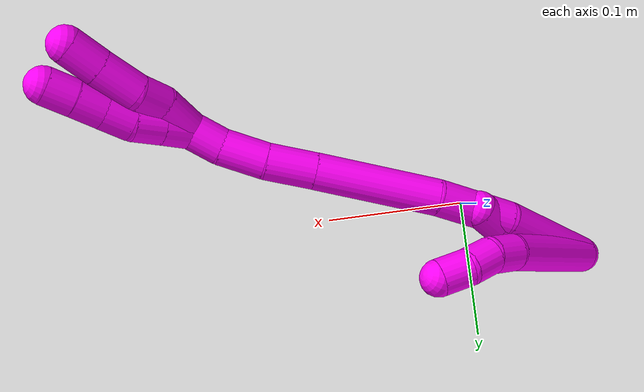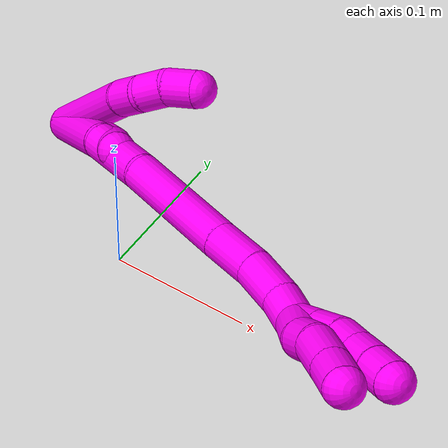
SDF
<sdf version="1.7">
 <world name="default">
  <model name="photoneo_s_sensor">
   <static>1</static>
   <pose>0 0 2 1.57079 1.57079 3.14159</pose>
   <link name="link">
    <inertial><mass>0.1</mass></inertial>
    <sensor name="sensor" type="depth">
     <update_rate>30</update_rate>
     <camera>
      <horizontal_fov>1.22</horizontal_fov>
      <image><width>1920</width><height>1200</height><format>B8G8R8</format></image>
      <clip><near>0.1</near><far>4</far></clip>
      <depth_camera><output>points</output></depth_camera>
     </camera>
     <plugin name="camera_plugin" filename="libgazebo_ros_depth_camera.so">
      <baseline>0.2</baseline>
      <alwaysOn>1</alwaysOn>
      <updateRate>0.0</updateRate>
      <cameraName>camera_ir</cameraName>
      <imageTopicName>/camera/color/image_raw</imageTopicName>
      <cameraInfoTopicName>/camera/color/camera_info</cameraInfoTopicName>
      <depthImageTopicName>/camera/depth/image_raw</depthImageTopicName>
      <depthImageCameraInfoTopicName>/camera/depth/camera_info</depthImageCameraInfoTopicName>
      <pointCloudTopicName>/camera/depth/points</pointCloudTopicName>
      <frameName>fr_optical</frameName>
      <pointCloudCutoff>0.1</pointCloudCutoff>
      <pointCloudCutoffMax>2.0</pointCloudCutoffMax>
      <distortionK1>0</distortionK1>
      <distortionK2>0</distortionK2>
      <distortionK3>0</distortionK3>
      <distortionT1>0</distortionT1>
      <distortionT2>0</distortionT2>
      <CxPrime>0</CxPrime>
      <Cx>0</Cx>
      <Cy>0</Cy>
      <focalLength>0</focalLength>
      <hackBaseline>0</hackBaseline>
     </plugin>
    </sensor>
   </link>
  </model>
  <model name="bin">
   <static>1</static>
   <link name="bottom">
    <collision name="collision-bottom">
     <pose>0 0 -0.01 0 -0 0</pose>
     <geometry><box><size>0.8 0.6 0.02</size></box></geometry>
     <surface>
      <friction><ode><mu>100</mu><mu2>100</mu2></ode></friction>
      <contact><collide_bitmask>65535</collide_bitmask></contact>
     </surface>
    </collision>
   </link>
   <link name="west_wall">
    <collision name="collision-west_wall">
     <pose>-0.41 0 0.1 0 -0 0</pose>
     <geometry><box><size>0.02 0.6 0.2</size></box></geometry>
     <surface>
      <friction><ode><mu>100</mu><mu2>100</mu2></ode></friction>
      <contact><collide_bitmask>65535</collide_bitmask></contact>
     </surface>
    </collision>
   </link>
   <link name="east_wall">
    <collision name="collision-east_wall">
     <pose>0.41 0 0.1 0 -0 0</pose>
     <geometry><box><size>0.02 0.6 0.2</size></box></geometry>
     <surface>
      <friction><ode><mu>100</mu><mu2>100</mu2></ode></friction>
      <contact><collide_bitmask>65535</collide_bitmask></contact>
     </surface>
    </collision>
   </link>
   <link name="south_wall">
    <collision name="collision-south_wall">
     <pose>0 -0.31 0.1 0 -0 0</pose>
     <geometry><box><size>0.8 0.02 0.2</size></box></geometry>
     <surface>
      <friction><ode><mu>100</mu><mu2>100</mu2></ode></friction>
      <contact><collide_bitmask>65535</collide_bitmask></contact>
     </surface>
    </collision>
   </link>
   <link name="north_wall">
    <collision name="collision-north_wall">
     <pose>0 0.31 0.1 0 -0 0</pose>
     <geometry><box><size>0.8 0.02 0.2</size></box></geometry>
     <surface>
      <friction><ode><mu>100</mu><mu2>100</mu2></ode></friction>
      <contact><collide_bitmask>65535</collide_bitmask></contact>
     </surface>
    </collision>
   </link>
  </model>
  <model name="10">
   <static>0</static>
   <link name="10">
    <collision name="collision-cylinder-e_1_2_8">
     <pose>-0.012011 -0.006168 -0.041383 2.99363 -0.27956 -2.17192</pose>
     <geometry><cylinder><radius>0.0125</radius><length>0.087059</length></cylinder></geometry>
     <surface>
      <friction><ode><mu>1.16</mu><mu2>1.16</mu2><slip1>0</slip1><slip2>0</slip2></ode></friction>
      <contact><ode><kp>1e+06</kp><kd>1</kd><max_vel>0</max_vel><min_depth>0.001</min_depth></ode></contact>
     </surface>
    </collision>
    <visual name="visual-cylinder-e_1_2_8">
     <pose>-0.012011 -0.006168 -0.041383 2.99363 -0.27956 -2.17192</pose>
     <geometry><cylinder><radius>0.0125</radius><length>0.087059</length></cylinder></geometry>
     <material><ambient>1 0 0.964706 1</ambient></material>
    </visual>
    <collision name="collision-cylinder-e_2_8_9">
     <pose>-0.025495 -0.015121 -0.093042 2.87697 -0.1374 -0.954331</pose>
     <geometry><cylinder><radius>0.0125</radius><length>0.021498</length></cylinder></geometry>
     <surface>
      <friction><ode><mu>1.16</mu><mu2>1.16</mu2><slip1>0</slip1><slip2>0</slip2></ode></friction>
      <contact><ode><kp>1e+06</kp><kd>1</kd><max_vel>0</max_vel><min_depth>0.001</min_depth></ode></contact>
     </surface>
    </collision>
    <visual name="visual-cylinder-e_2_8_9">
     <pose>-0.025495 -0.015121 -0.093042 2.87697 -0.1374 -0.954331</pose>
     <geometry><cylinder><radius>0.0125</radius><length>0.021498</length></cylinder></geometry>
     <material><ambient>1 0 0.964706 1</ambient></material>
    </visual>
    <collision name="collision-cylinder-e_3_9_10">
     <pose>-0.027263 -0.023348 -0.111787 2.57037 -0.029405 -0.100064</pose>
     <geometry><cylinder><radius>0.0125</radius><length>0.020141</length></cylinder></geometry>
     <surface>
      <friction><ode><mu>1.16</mu><mu2>1.16</mu2><slip1>0</slip1><slip2>0</slip2></ode></friction>
      <contact><ode><kp>1e+06</kp><kd>1</kd><max_vel>0</max_vel><min_depth>0.001</min_depth></ode></contact>
     </surface>
    </collision>
    <visual name="visual-cylinder-e_3_9_10">
     <pose>-0.027263 -0.023348 -0.111787 2.57037 -0.029405 -0.100064</pose>
     <geometry><cylinder><radius>0.0125</radius><length>0.020141</length></cylinder></geometry>
     <material><ambient>1 0 0.964706 1</ambient></material>
    </visual>
    <collision name="collision-cylinder-e_4_10_6">
     <pose>-0.02481 -0.034077 -0.129083 2.60203 0.261083 0.886542</pose>
     <geometry><cylinder><radius>0.0125</radius><length>0.021302</length></cylinder></geometry>
     <surface>
      <friction><ode><mu>1.16</mu><mu2>1.16</mu2><slip1>0</slip1><slip2>0</slip2></ode></friction>
      <contact><ode><kp>1e+06</kp><kd>1</kd><max_vel>0</max_vel><min_depth>0.001</min_depth></ode></contact>
     </surface>
    </collision>
    <visual name="visual-cylinder-e_4_10_6">
     <pose>-0.02481 -0.034077 -0.129083 2.60203 0.261083 0.886542</pose>
     <geometry><cylinder><radius>0.0125</radius><length>0.021302</length></cylinder></geometry>
     <material><ambient>1 0 0.964706 1</ambient></material>
    </visual>
    <collision name="collision-cylinder-e_1_2_11">
     <pose>0.00028 0.00024 -0.009993 -3.11757 0.028033 -1.72481</pose>
     <geometry><cylinder><radius>0.0125</radius><length>0.02</length></cylinder></geometry>
     <surface>
      <friction><ode><mu>1.16</mu><mu2>1.16</mu2><slip1>0</slip1><slip2>0</slip2></ode></friction>
      <contact><ode><kp>1e+06</kp><kd>1</kd><max_vel>0</max_vel><min_depth>0.001</min_depth></ode></contact>
     </surface>
    </collision>
    <visual name="visual-cylinder-e_1_2_11">
     <pose>0.00028 0.00024 -0.009993 -3.11757 0.028033 -1.72481</pose>
     <geometry><cylinder><radius>0.0125</radius><length>0.02</length></cylinder></geometry>
     <material><ambient>1 0 0.964706 1</ambient></material>
    </visual>
    <collision name="collision-cylinder-e_2_11_12">
     <pose>0.000843 0.001031 -0.029967 -3.0865 0.028262 -0.947818</pose>
     <geometry><cylinder><radius>0.0125</radius><length>0.02</length></cylinder></geometry>
     <surface>
      <friction><ode><mu>1.16</mu><mu2>1.16</mu2><slip1>0</slip1><slip2>0</slip2></ode></friction>
      <contact><ode><kp>1e+06</kp><kd>1</kd><max_vel>0</max_vel><min_depth>0.001</min_depth></ode></contact>
     </surface>
    </collision>
    <visual name="visual-cylinder-e_2_11_12">
     <pose>0.000843 0.001031 -0.029967 -3.0865 0.028262 -0.947818</pose>
     <geometry><cylinder><radius>0.0125</radius><length>0.02</length></cylinder></geometry>
     <material><ambient>1 0 0.964706 1</ambient></material>
    </visual>
    <collision name="collision-cylinder-e_3_12_13">
     <pose>0.001004 0.002781 -0.049875 -3.02128 -0.012143 0.200929</pose>
     <geometry><cylinder><radius>0.0125</radius><length>0.02</length></cylinder></geometry>
     <surface>
      <friction><ode><mu>1.16</mu><mu2>1.16</mu2><slip1>0</slip1><slip2>0</slip2></ode></friction>
      <contact><ode><kp>1e+06</kp><kd>1</kd><max_vel>0</max_vel><min_depth>0.001</min_depth></ode></contact>
     </surface>
    </collision>
    <visual name="visual-cylinder-e_3_12_13">
     <pose>0.001004 0.002781 -0.049875 -3.02128 -0.012143 0.200929</pose>
     <geometry><cylinder><radius>0.0125</radius><length>0.02</length></cylinder></geometry>
     <material><ambient>1 0 0.964706 1</ambient></material>
    </visual>
    <collision name="collision-cylinder-e_4_13_14">
     <pose>0.001157 0.005312 -0.069709 -3.0081 0.027438 -0.404852</pose>
     <geometry><cylinder><radius>0.0125</radius><length>0.02</length></cylinder></geometry>
     <surface>
      <friction><ode><mu>1.16</mu><mu2>1.16</mu2><slip1>0</slip1><slip2>0</slip2></ode></friction>
      <contact><ode><kp>1e+06</kp><kd>1</kd><max_vel>0</max_vel><min_depth>0.001</min_depth></ode></contact>
     </surface>
    </collision>
    <visual name="visual-cylinder-e_4_13_14">
     <pose>0.001157 0.005312 -0.069709 -3.0081 0.027438 -0.404852</pose>
     <geometry><cylinder><radius>0.0125</radius><length>0.02</length></cylinder></geometry>
     <material><ambient>1 0 0.964706 1</ambient></material>
    </visual>
    <collision name="collision-cylinder-e_5_14_5">
     <pose>0.000229 0.009811 -0.089025 -2.81668 -0.120596 0.705837</pose>
     <geometry><cylinder><radius>0.0125</radius><length>0.02</length></cylinder></geometry>
     <surface>
      <friction><ode><mu>1.16</mu><mu2>1.16</mu2><slip1>0</slip1><slip2>0</slip2></ode></friction>
      <contact><ode><kp>1e+06</kp><kd>1</kd><max_vel>0</max_vel><min_depth>0.001</min_depth></ode></contact>
     </surface>
    </collision>
    <visual name="visual-cylinder-e_5_14_5">
     <pose>0.000229 0.009811 -0.089025 -2.81668 -0.120596 0.705837</pose>
     <geometry><cylinder><radius>0.0125</radius><length>0.02</length></cylinder></geometry>
     <material><ambient>1 0 0.964706 1</ambient></material>
    </visual>
    <collision name="collision-cylinder-e_1_2_15">
     <pose>-0.001527 0.005426 -0.037379 -2.99745 -0.040404 0.545734</pose>
     <geometry><cylinder><radius>0.0125</radius><length>0.075604</length></cylinder></geometry>
     <surface>
      <friction><ode><mu>1.16</mu><mu2>1.16</mu2><slip1>0</slip1><slip2>0</slip2></ode></friction>
      <contact><ode><kp>1e+06</kp><kd>1</kd><max_vel>0</max_vel><min_depth>0.001</min_depth></ode></contact>
     </surface>
    </collision>
    <visual name="visual-cylinder-e_1_2_15">
     <pose>-0.001527 0.005426 -0.037379 -2.99745 -0.040404 0.545734</pose>
     <geometry><cylinder><radius>0.0125</radius><length>0.075604</length></cylinder></geometry>
     <material><ambient>1 0 0.964706 1</ambient></material>
    </visual>
    <collision name="collision-cylinder-e_2_15_16">
     <pose>0.003159 0.012802 -0.100866 -3.067 0.232992 -2.5243</pose>
     <geometry><cylinder><radius>0.0125</radius><length>0.053813</length></cylinder></geometry>
     <surface>
      <friction><ode><mu>1.16</mu><mu2>1.16</mu2><slip1>0</slip1><slip2>0</slip2></ode></friction>
      <contact><ode><kp>1e+06</kp><kd>1</kd><max_vel>0</max_vel><min_depth>0.001</min_depth></ode></contact>
     </surface>
    </collision>
    <visual name="visual-cylinder-e_2_15_16">
     <pose>0.003159 0.012802 -0.100866 -3.067 0.232992 -2.5243</pose>
     <geometry><cylinder><radius>0.0125</radius><length>0.053813</length></cylinder></geometry>
     <material><ambient>1 0 0.964706 1</ambient></material>
    </visual>
    <collision name="collision-cylinder-e_3_16_17">
     <pose>0.027145 0.015291 -0.165179 -3.12753 0.43538 -3.07805</pose>
     <geometry><cylinder><radius>0.0125</radius><length>0.084283</length></cylinder></geometry>
     <surface>
      <friction><ode><mu>1.16</mu><mu2>1.16</mu2><slip1>0</slip1><slip2>0</slip2></ode></friction>
      <contact><ode><kp>1e+06</kp><kd>1</kd><max_vel>0</max_vel><min_depth>0.001</min_depth></ode></contact>
     </surface>
    </collision>
    <visual name="visual-cylinder-e_3_16_17">
     <pose>0.027145 0.015291 -0.165179 -3.12753 0.43538 -3.07805</pose>
     <geometry><cylinder><radius>0.0125</radius><length>0.084283</length></cylinder></geometry>
     <material><ambient>1 0 0.964706 1</ambient></material>
    </visual>
    <collision name="collision-cylinder-e_4_17_18">
     <pose>0.051702 0.015785 -0.21845 3.13878 0.423112 3.12851</pose>
     <geometry><cylinder><radius>0.0125</radius><length>0.033044</length></cylinder></geometry>
     <surface>
      <friction><ode><mu>1.16</mu><mu2>1.16</mu2><slip1>0</slip1><slip2>0</slip2></ode></friction>
      <contact><ode><kp>1e+06</kp><kd>1</kd><max_vel>0</max_vel><min_depth>0.001</min_depth></ode></contact>
     </surface>
    </collision>
    <visual name="visual-cylinder-e_4_17_18">
     <pose>0.051702 0.015785 -0.21845 3.13878 0.423112 3.12851</pose>
     <geometry><cylinder><radius>0.0125</radius><length>0.033044</length></cylinder></geometry>
     <material><ambient>1 0 0.964706 1</ambient></material>
    </visual>
    <collision name="collision-cylinder-e_5_18_19">
     <pose>0.065301 0.01754 -0.247068 -3.00978 0.462422 -2.59493</pose>
     <geometry><cylinder><radius>0.0125</radius><length>0.030551</length></cylinder></geometry>
     <surface>
      <friction><ode><mu>1.16</mu><mu2>1.16</mu2><slip1>0</slip1><slip2>0</slip2></ode></friction>
      <contact><ode><kp>1e+06</kp><kd>1</kd><max_vel>0</max_vel><min_depth>0.001</min_depth></ode></contact>
     </surface>
    </collision>
    <visual name="visual-cylinder-e_5_18_19">
     <pose>0.065301 0.01754 -0.247068 -3.00978 0.462422 -2.59493</pose>
     <geometry><cylinder><radius>0.0125</radius><length>0.030551</length></cylinder></geometry>
     <material><ambient>1 0 0.964706 1</ambient></material>
    </visual>
    <collision name="collision-cylinder-e_6_19_1">
     <pose>0.075864 0.022556 -0.270841 -2.8364 0.336557 -1.67015</pose>
     <geometry><cylinder><radius>0.0125</radius><length>0.022704</length></cylinder></geometry>
     <surface>
      <friction><ode><mu>1.16</mu><mu2>1.16</mu2><slip1>0</slip1><slip2>0</slip2></ode></friction>
      <contact><ode><kp>1e+06</kp><kd>1</kd><max_vel>0</max_vel><min_depth>0.001</min_depth></ode></contact>
     </surface>
    </collision>
    <visual name="visual-cylinder-e_6_19_1">
     <pose>0.075864 0.022556 -0.270841 -2.8364 0.336557 -1.67015</pose>
     <geometry><cylinder><radius>0.0125</radius><length>0.022704</length></cylinder></geometry>
     <material><ambient>1 0 0.964706 1</ambient></material>
    </visual>
    <collision name="collision-cylinder-e_1_1_20">
     <pose>0.078282 0.031363 -0.293117 -2.70763 -0.099877 0.445898</pose>
     <geometry><cylinder><radius>0.0125</radius><length>0.026708</length></cylinder></geometry>
     <surface>
      <friction><ode><mu>1.16</mu><mu2>1.16</mu2><slip1>0</slip1><slip2>0</slip2></ode></friction>
      <contact><ode><kp>1e+06</kp><kd>1</kd><max_vel>0</max_vel><min_depth>0.001</min_depth></ode></contact>
     </surface>
    </collision>
    <visual name="visual-cylinder-e_1_1_20">
     <pose>0.078282 0.031363 -0.293117 -2.70763 -0.099877 0.445898</pose>
     <geometry><cylinder><radius>0.0125</radius><length>0.026708</length></cylinder></geometry>
     <material><ambient>1 0 0.964706 1</ambient></material>
    </visual>
    <collision name="collision-cylinder-e_2_20_21">
     <pose>0.075589 0.038149 -0.315119 -3.02163 -0.135012 1.68902</pose>
     <geometry><cylinder><radius>0.0125</radius><length>0.020223</length></cylinder></geometry>
     <surface>
      <friction><ode><mu>1.16</mu><mu2>1.16</mu2><slip1>0</slip1><slip2>0</slip2></ode></friction>
      <contact><ode><kp>1e+06</kp><kd>1</kd><max_vel>0</max_vel><min_depth>0.001</min_depth></ode></contact>
     </surface>
    </collision>
    <visual name="visual-cylinder-e_2_20_21">
     <pose>0.075589 0.038149 -0.315119 -3.02163 -0.135012 1.68902</pose>
     <geometry><cylinder><radius>0.0125</radius><length>0.020223</length></cylinder></geometry>
     <material><ambient>1 0 0.964706 1</ambient></material>
    </visual>
    <collision name="collision-cylinder-e_3_21_22">
     <pose>0.075109 0.044025 -0.338909 -2.81575 0.060212 -0.362389</pose>
     <geometry><cylinder><radius>0.0125</radius><length>0.029276</length></cylinder></geometry>
     <surface>
      <friction><ode><mu>1.16</mu><mu2>1.16</mu2><slip1>0</slip1><slip2>0</slip2></ode></friction>
      <contact><ode><kp>1e+06</kp><kd>1</kd><max_vel>0</max_vel><min_depth>0.001</min_depth></ode></contact>
     </surface>
    </collision>
    <visual name="visual-cylinder-e_3_21_22">
     <pose>0.075109 0.044025 -0.338909 -2.81575 0.060212 -0.362389</pose>
     <geometry><cylinder><radius>0.0125</radius><length>0.029276</length></cylinder></geometry>
     <material><ambient>1 0 0.964706 1</ambient></material>
    </visual>
    <collision name="collision-cylinder-e_4_22_4">
     <pose>0.076435 0.052776 -0.363921 -2.79181 0.037464 -0.211263</pose>
     <geometry><cylinder><radius>0.0125</radius><length>0.023793</length></cylinder></geometry>
     <surface>
      <friction><ode><mu>1.16</mu><mu2>1.16</mu2><slip1>0</slip1><slip2>0</slip2></ode></friction>
      <contact><ode><kp>1e+06</kp><kd>1</kd><max_vel>0</max_vel><min_depth>0.001</min_depth></ode></contact>
     </surface>
    </collision>
    <visual name="visual-cylinder-e_4_22_4">
     <pose>0.076435 0.052776 -0.363921 -2.79181 0.037464 -0.211263</pose>
     <geometry><cylinder><radius>0.0125</radius><length>0.023793</length></cylinder></geometry>
     <material><ambient>1 0 0.964706 1</ambient></material>
    </visual>
    <collision name="collision-cylinder-e_1_1_23">
     <pose>0.080365 0.024775 -0.290982 3.04106 0.07529 1.28524</pose>
     <geometry><cylinder><radius>0.0125</radius><length>0.02</length></cylinder></geometry>
     <surface>
      <friction><ode><mu>1.16</mu><mu2>1.16</mu2><slip1>0</slip1><slip2>0</slip2></ode></friction>
      <contact><ode><kp>1e+06</kp><kd>1</kd><max_vel>0</max_vel><min_depth>0.001</min_depth></ode></contact>
     </surface>
    </collision>
    <visual name="visual-cylinder-e_1_1_23">
     <pose>0.080365 0.024775 -0.290982 3.04106 0.07529 1.28524</pose>
     <geometry><cylinder><radius>0.0125</radius><length>0.02</length></cylinder></geometry>
     <material><ambient>1 0 0.964706 1</ambient></material>
    </visual>
    <collision name="collision-cylinder-e_2_23_24">
     <pose>0.081866 0.02263 -0.310809 3.02654 0.074963 1.15434</pose>
     <geometry><cylinder><radius>0.0125</radius><length>0.02</length></cylinder></geometry>
     <surface>
      <friction><ode><mu>1.16</mu><mu2>1.16</mu2><slip1>0</slip1><slip2>0</slip2></ode></friction>
      <contact><ode><kp>1e+06</kp><kd>1</kd><max_vel>0</max_vel><min_depth>0.001</min_depth></ode></contact>
     </surface>
    </collision>
    <visual name="visual-cylinder-e_2_23_24">
     <pose>0.081866 0.02263 -0.310809 3.02654 0.074963 1.15434</pose>
     <geometry><cylinder><radius>0.0125</radius><length>0.02</length></cylinder></geometry>
     <material><ambient>1 0 0.964706 1</ambient></material>
    </visual>
    <collision name="collision-cylinder-e_3_24_25">
     <pose>0.083871 0.023047 -0.330513 -2.98349 0.125931 -1.34449</pose>
     <geometry><cylinder><radius>0.0125</radius><length>0.02</length></cylinder></geometry>
     <surface>
      <friction><ode><mu>1.16</mu><mu2>1.16</mu2><slip1>0</slip1><slip2>0</slip2></ode></friction>
      <contact><ode><kp>1e+06</kp><kd>1</kd><max_vel>0</max_vel><min_depth>0.001</min_depth></ode></contact>
     </surface>
    </collision>
    <visual name="visual-cylinder-e_3_24_25">
     <pose>0.083871 0.023047 -0.330513 -2.98349 0.125931 -1.34449</pose>
     <geometry><cylinder><radius>0.0125</radius><length>0.02</length></cylinder></geometry>
     <material><ambient>1 0 0.964706 1</ambient></material>
    </visual>
    <collision name="collision-cylinder-e_4_25_26">
     <pose>0.085979 0.026171 -0.35015 -2.98414 0.085319 -0.991958</pose>
     <geometry><cylinder><radius>0.0125</radius><length>0.02</length></cylinder></geometry>
     <surface>
      <friction><ode><mu>1.16</mu><mu2>1.16</mu2><slip1>0</slip1><slip2>0</slip2></ode></friction>
      <contact><ode><kp>1e+06</kp><kd>1</kd><max_vel>0</max_vel><min_depth>0.001</min_depth></ode></contact>
     </surface>
    </collision>
    <visual name="visual-cylinder-e_4_25_26">
     <pose>0.085979 0.026171 -0.35015 -2.98414 0.085319 -0.991958</pose>
     <geometry><cylinder><radius>0.0125</radius><length>0.02</length></cylinder></geometry>
     <material><ambient>1 0 0.964706 1</ambient></material>
    </visual>
    <collision name="collision-cylinder-e_5_26_3">
     <pose>0.08819 0.029234 -0.369783 -2.98956 0.136276 -1.46125</pose>
     <geometry><cylinder><radius>0.0125</radius><length>0.02</length></cylinder></geometry>
     <surface>
      <friction><ode><mu>1.16</mu><mu2>1.16</mu2><slip1>0</slip1><slip2>0</slip2></ode></friction>
      <contact><ode><kp>1e+06</kp><kd>1</kd><max_vel>0</max_vel><min_depth>0.001</min_depth></ode></contact>
     </surface>
    </collision>
    <visual name="visual-cylinder-e_5_26_3">
     <pose>0.08819 0.029234 -0.369783 -2.98956 0.136276 -1.46125</pose>
     <geometry><cylinder><radius>0.0125</radius><length>0.02</length></cylinder></geometry>
     <material><ambient>1 0 0.964706 1</ambient></material>
    </visual>
    <collision name="collision-sphere-3">
     <pose>0.089549 0.030734 -0.379576 0 -0 0</pose>
     <geometry><sphere><radius>0.0125</radius></sphere></geometry>
     <surface>
      <friction><ode><mu>1.16</mu><mu2>1.16</mu2><slip1>0</slip1><slip2>0</slip2></ode></friction>
      <contact><ode><kp>1e+06</kp><kd>1</kd><max_vel>0</max_vel><min_depth>0.001</min_depth></ode></contact>
     </surface>
    </collision>
    <visual name="visual-sphere-3">
     <pose>0.089549 0.030734 -0.379576 0 -0 0</pose>
     <geometry><sphere><radius>0.0125</radius></sphere></geometry>
     <material><ambient>1 0 0.964706 1</ambient></material>
    </visual>
    <collision name="collision-sphere-26">
     <pose>0.086832 0.027733 -0.35999 0 -0 0</pose>
     <geometry><sphere><radius>0.0125</radius></sphere></geometry>
     <surface>
      <friction><ode><mu>1.16</mu><mu2>1.16</mu2><slip1>0</slip1><slip2>0</slip2></ode></friction>
      <contact><ode><kp>1e+06</kp><kd>1</kd><max_vel>0</max_vel><min_depth>0.001</min_depth></ode></contact>
     </surface>
    </collision>
    <visual name="visual-sphere-26">
     <pose>0.086832 0.027733 -0.35999 0 -0 0</pose>
     <geometry><sphere><radius>0.0125</radius></sphere></geometry>
     <material><ambient>1 0 0.964706 1</ambient></material>
    </visual>
    <collision name="collision-sphere-25">
     <pose>0.085127 0.024609 -0.34031 0 -0 0</pose>
     <geometry><sphere><radius>0.0125</radius></sphere></geometry>
     <surface>
      <friction><ode><mu>1.16</mu><mu2>1.16</mu2><slip1>0</slip1><slip2>0</slip2></ode></friction>
      <contact><ode><kp>1e+06</kp><kd>1</kd><max_vel>0</max_vel><min_depth>0.001</min_depth></ode></contact>
     </surface>
    </collision>
    <visual name="visual-sphere-25">
     <pose>0.085127 0.024609 -0.34031 0 -0 0</pose>
     <geometry><sphere><radius>0.0125</radius></sphere></geometry>
     <material><ambient>1 0 0.964706 1</ambient></material>
    </visual>
    <collision name="collision-sphere-24">
     <pose>0.082615 0.021485 -0.320715 0 -0 0</pose>
     <geometry><sphere><radius>0.0125</radius></sphere></geometry>
     <surface>
      <friction><ode><mu>1.16</mu><mu2>1.16</mu2><slip1>0</slip1><slip2>0</slip2></ode></friction>
      <contact><ode><kp>1e+06</kp><kd>1</kd><max_vel>0</max_vel><min_depth>0.001</min_depth></ode></contact>
     </surface>
    </collision>
    <visual name="visual-sphere-24">
     <pose>0.082615 0.021485 -0.320715 0 -0 0</pose>
     <geometry><sphere><radius>0.0125</radius></sphere></geometry>
     <material><ambient>1 0 0.964706 1</ambient></material>
    </visual>
    <collision name="collision-sphere-23">
     <pose>0.081117 0.023774 -0.300903 0 -0 0</pose>
     <geometry><sphere><radius>0.0125</radius></sphere></geometry>
     <surface>
      <friction><ode><mu>1.16</mu><mu2>1.16</mu2><slip1>0</slip1><slip2>0</slip2></ode></friction>
      <contact><ode><kp>1e+06</kp><kd>1</kd><max_vel>0</max_vel><min_depth>0.001</min_depth></ode></contact>
     </surface>
    </collision>
    <visual name="visual-sphere-23">
     <pose>0.081117 0.023774 -0.300903 0 -0 0</pose>
     <geometry><sphere><radius>0.0125</radius></sphere></geometry>
     <material><ambient>1 0 0.964706 1</ambient></material>
    </visual>
    <collision name="collision-sphere-4">
     <pose>0.076881 0.05685 -0.375089 0 -0 0</pose>
     <geometry><sphere><radius>0.0125</radius></sphere></geometry>
     <surface>
      <friction><ode><mu>1.16</mu><mu2>1.16</mu2><slip1>0</slip1><slip2>0</slip2></ode></friction>
      <contact><ode><kp>1e+06</kp><kd>1</kd><max_vel>0</max_vel><min_depth>0.001</min_depth></ode></contact>
     </surface>
    </collision>
    <visual name="visual-sphere-4">
     <pose>0.076881 0.05685 -0.375089 0 -0 0</pose>
     <geometry><sphere><radius>0.0125</radius></sphere></geometry>
     <material><ambient>1 0 0.964706 1</ambient></material>
    </visual>
    <collision name="collision-sphere-22">
     <pose>0.07599 0.048702 -0.352752 0 -0 0</pose>
     <geometry><sphere><radius>0.0125</radius></sphere></geometry>
     <surface>
      <friction><ode><mu>1.16</mu><mu2>1.16</mu2><slip1>0</slip1><slip2>0</slip2></ode></friction>
      <contact><ode><kp>1e+06</kp><kd>1</kd><max_vel>0</max_vel><min_depth>0.001</min_depth></ode></contact>
     </surface>
    </collision>
    <visual name="visual-sphere-22">
     <pose>0.07599 0.048702 -0.352752 0 -0 0</pose>
     <geometry><sphere><radius>0.0125</radius></sphere></geometry>
     <material><ambient>1 0 0.964706 1</ambient></material>
    </visual>
    <collision name="collision-sphere-21">
     <pose>0.074228 0.039348 -0.325067 0 -0 0</pose>
     <geometry><sphere><radius>0.0125</radius></sphere></geometry>
     <surface>
      <friction><ode><mu>1.16</mu><mu2>1.16</mu2><slip1>0</slip1><slip2>0</slip2></ode></friction>
      <contact><ode><kp>1e+06</kp><kd>1</kd><max_vel>0</max_vel><min_depth>0.001</min_depth></ode></contact>
     </surface>
    </collision>
    <visual name="visual-sphere-21">
     <pose>0.074228 0.039348 -0.325067 0 -0 0</pose>
     <geometry><sphere><radius>0.0125</radius></sphere></geometry>
     <material><ambient>1 0 0.964706 1</ambient></material>
    </visual>
    <collision name="collision-sphere-20">
     <pose>0.07695 0.03695 -0.305172 0 -0 0</pose>
     <geometry><sphere><radius>0.0125</radius></sphere></geometry>
     <surface>
      <friction><ode><mu>1.16</mu><mu2>1.16</mu2><slip1>0</slip1><slip2>0</slip2></ode></friction>
      <contact><ode><kp>1e+06</kp><kd>1</kd><max_vel>0</max_vel><min_depth>0.001</min_depth></ode></contact>
     </surface>
    </collision>
    <visual name="visual-sphere-20">
     <pose>0.07695 0.03695 -0.305172 0 -0 0</pose>
     <geometry><sphere><radius>0.0125</radius></sphere></geometry>
     <material><ambient>1 0 0.964706 1</ambient></material>
    </visual>
    <collision name="collision-sphere-11">
     <pose>0.000561 0.00048 -0.019986 0 -0 0</pose>
     <geometry><sphere><radius>0.0125</radius></sphere></geometry>
     <surface>
      <friction><ode><mu>1.16</mu><mu2>1.16</mu2><slip1>0</slip1><slip2>0</slip2></ode></friction>
      <contact><ode><kp>1e+06</kp><kd>1</kd><max_vel>0</max_vel><min_depth>0.001</min_depth></ode></contact>
     </surface>
    </collision>
    <visual name="visual-sphere-11">
     <pose>0.000561 0.00048 -0.019986 0 -0 0</pose>
     <geometry><sphere><radius>0.0125</radius></sphere></geometry>
     <material><ambient>1 0 0.964706 1</ambient></material>
    </visual>
    <collision name="collision-sphere-6">
     <pose>-0.02206 -0.039364 -0.137911 0 -0 0</pose>
     <geometry><sphere><radius>0.0125</radius></sphere></geometry>
     <surface>
      <friction><ode><mu>1.16</mu><mu2>1.16</mu2><slip1>0</slip1><slip2>0</slip2></ode></friction>
      <contact><ode><kp>1e+06</kp><kd>1</kd><max_vel>0</max_vel><min_depth>0.001</min_depth></ode></contact>
     </surface>
    </collision>
    <visual name="visual-sphere-6">
     <pose>-0.02206 -0.039364 -0.137911 0 -0 0</pose>
     <geometry><sphere><radius>0.0125</radius></sphere></geometry>
     <material><ambient>1 0 0.964706 1</ambient></material>
    </visual>
    <collision name="collision-sphere-10">
     <pose>-0.027559 -0.02879 -0.120255 0 -0 0</pose>
     <geometry><sphere><radius>0.0125</radius></sphere></geometry>
     <surface>
      <friction><ode><mu>1.16</mu><mu2>1.16</mu2><slip1>0</slip1><slip2>0</slip2></ode></friction>
      <contact><ode><kp>1e+06</kp><kd>1</kd><max_vel>0</max_vel><min_depth>0.001</min_depth></ode></contact>
     </surface>
    </collision>
    <visual name="visual-sphere-10">
     <pose>-0.027559 -0.02879 -0.120255 0 -0 0</pose>
     <geometry><sphere><radius>0.0125</radius></sphere></geometry>
     <material><ambient>1 0 0.964706 1</ambient></material>
    </visual>
    <collision name="collision-sphere-9">
     <pose>-0.026967 -0.017906 -0.103319 0 -0 0</pose>
     <geometry><sphere><radius>0.0125</radius></sphere></geometry>
     <surface>
      <friction><ode><mu>1.16</mu><mu2>1.16</mu2><slip1>0</slip1><slip2>0</slip2></ode></friction>
      <contact><ode><kp>1e+06</kp><kd>1</kd><max_vel>0</max_vel><min_depth>0.001</min_depth></ode></contact>
     </surface>
    </collision>
    <visual name="visual-sphere-9">
     <pose>-0.026967 -0.017906 -0.103319 0 -0 0</pose>
     <geometry><sphere><radius>0.0125</radius></sphere></geometry>
     <material><ambient>1 0 0.964706 1</ambient></material>
    </visual>
    <collision name="collision-sphere-2">
     <geometry><sphere><radius>0.0125</radius></sphere></geometry>
     <surface>
      <friction><ode><mu>1.16</mu><mu2>1.16</mu2><slip1>0</slip1><slip2>0</slip2></ode></friction>
      <contact><ode><kp>1e+06</kp><kd>1</kd><max_vel>0</max_vel><min_depth>0.001</min_depth></ode></contact>
     </surface>
    </collision>
    <visual name="visual-sphere-2">
     <geometry><sphere><radius>0.0125</radius></sphere></geometry>
     <material><ambient>1 0 0.964706 1</ambient></material>
    </visual>
    <collision name="collision-sphere-19">
     <pose>0.072115 0.019337 -0.260621 0 -0 0</pose>
     <geometry><sphere><radius>0.0125</radius></sphere></geometry>
     <surface>
      <friction><ode><mu>1.16</mu><mu2>1.16</mu2><slip1>0</slip1><slip2>0</slip2></ode></friction>
      <contact><ode><kp>1e+06</kp><kd>1</kd><max_vel>0</max_vel><min_depth>0.001</min_depth></ode></contact>
     </surface>
    </collision>
    <visual name="visual-sphere-19">
     <pose>0.072115 0.019337 -0.260621 0 -0 0</pose>
     <geometry><sphere><radius>0.0125</radius></sphere></geometry>
     <material><ambient>1 0 0.964706 1</ambient></material>
    </visual>
    <collision name="collision-sphere-8">
     <pose>-0.024022 -0.012336 -0.082765 0 -0 0</pose>
     <geometry><sphere><radius>0.0125</radius></sphere></geometry>
     <surface>
      <friction><ode><mu>1.16</mu><mu2>1.16</mu2><slip1>0</slip1><slip2>0</slip2></ode></friction>
      <contact><ode><kp>1e+06</kp><kd>1</kd><max_vel>0</max_vel><min_depth>0.001</min_depth></ode></contact>
     </surface>
    </collision>
    <visual name="visual-sphere-8">
     <pose>-0.024022 -0.012336 -0.082765 0 -0 0</pose>
     <geometry><sphere><radius>0.0125</radius></sphere></geometry>
     <material><ambient>1 0 0.964706 1</ambient></material>
    </visual>
    <collision name="collision-sphere-12">
     <pose>0.001126 0.001581 -0.039948 0 -0 0</pose>
     <geometry><sphere><radius>0.0125</radius></sphere></geometry>
     <surface>
      <friction><ode><mu>1.16</mu><mu2>1.16</mu2><slip1>0</slip1><slip2>0</slip2></ode></friction>
      <contact><ode><kp>1e+06</kp><kd>1</kd><max_vel>0</max_vel><min_depth>0.001</min_depth></ode></contact>
     </surface>
    </collision>
    <visual name="visual-sphere-12">
     <pose>0.001126 0.001581 -0.039948 0 -0 0</pose>
     <geometry><sphere><radius>0.0125</radius></sphere></geometry>
     <material><ambient>1 0 0.964706 1</ambient></material>
    </visual>
    <collision name="collision-sphere-13">
     <pose>0.000883 0.003981 -0.059802 0 -0 0</pose>
     <geometry><sphere><radius>0.0125</radius></sphere></geometry>
     <surface>
      <friction><ode><mu>1.16</mu><mu2>1.16</mu2><slip1>0</slip1><slip2>0</slip2></ode></friction>
      <contact><ode><kp>1e+06</kp><kd>1</kd><max_vel>0</max_vel><min_depth>0.001</min_depth></ode></contact>
     </surface>
    </collision>
    <visual name="visual-sphere-13">
     <pose>0.000883 0.003981 -0.059802 0 -0 0</pose>
     <geometry><sphere><radius>0.0125</radius></sphere></geometry>
     <material><ambient>1 0 0.964706 1</ambient></material>
    </visual>
    <collision name="collision-sphere-14">
     <pose>0.001432 0.006642 -0.079617 0 -0 0</pose>
     <geometry><sphere><radius>0.0125</radius></sphere></geometry>
     <surface>
      <friction><ode><mu>1.16</mu><mu2>1.16</mu2><slip1>0</slip1><slip2>0</slip2></ode></friction>
      <contact><ode><kp>1e+06</kp><kd>1</kd><max_vel>0</max_vel><min_depth>0.001</min_depth></ode></contact>
     </surface>
    </collision>
    <visual name="visual-sphere-14">
     <pose>0.001432 0.006642 -0.079617 0 -0 0</pose>
     <geometry><sphere><radius>0.0125</radius></sphere></geometry>
     <material><ambient>1 0 0.964706 1</ambient></material>
    </visual>
    <collision name="collision-sphere-5">
     <pose>-0.000974 0.01298 -0.098433 0 -0 0</pose>
     <geometry><sphere><radius>0.0125</radius></sphere></geometry>
     <surface>
      <friction><ode><mu>1.16</mu><mu2>1.16</mu2><slip1>0</slip1><slip2>0</slip2></ode></friction>
      <contact><ode><kp>1e+06</kp><kd>1</kd><max_vel>0</max_vel><min_depth>0.001</min_depth></ode></contact>
     </surface>
    </collision>
    <visual name="visual-sphere-5">
     <pose>-0.000974 0.01298 -0.098433 0 -0 0</pose>
     <geometry><sphere><radius>0.0125</radius></sphere></geometry>
     <material><ambient>1 0 0.964706 1</ambient></material>
    </visual>
    <collision name="collision-sphere-15">
     <pose>-0.003054 0.010852 -0.074759 0 -0 0</pose>
     <geometry><sphere><radius>0.0125</radius></sphere></geometry>
     <surface>
      <friction><ode><mu>1.16</mu><mu2>1.16</mu2><slip1>0</slip1><slip2>0</slip2></ode></friction>
      <contact><ode><kp>1e+06</kp><kd>1</kd><max_vel>0</max_vel><min_depth>0.001</min_depth></ode></contact>
     </surface>
    </collision>
    <visual name="visual-sphere-15">
     <pose>-0.003054 0.010852 -0.074759 0 -0 0</pose>
     <geometry><sphere><radius>0.0125</radius></sphere></geometry>
     <material><ambient>1 0 0.964706 1</ambient></material>
    </visual>
    <collision name="collision-sphere-16">
     <pose>0.009371 0.014753 -0.126972 0 -0 0</pose>
     <geometry><sphere><radius>0.0125</radius></sphere></geometry>
     <surface>
      <friction><ode><mu>1.16</mu><mu2>1.16</mu2><slip1>0</slip1><slip2>0</slip2></ode></friction>
      <contact><ode><kp>1e+06</kp><kd>1</kd><max_vel>0</max_vel><min_depth>0.001</min_depth></ode></contact>
     </surface>
    </collision>
    <visual name="visual-sphere-16">
     <pose>0.009371 0.014753 -0.126972 0 -0 0</pose>
     <geometry><sphere><radius>0.0125</radius></sphere></geometry>
     <material><ambient>1 0 0.964706 1</ambient></material>
    </visual>
    <collision name="collision-sphere-17">
     <pose>0.044918 0.015828 -0.203385 0 -0 0</pose>
     <geometry><sphere><radius>0.0125</radius></sphere></geometry>
     <surface>
      <friction><ode><mu>1.16</mu><mu2>1.16</mu2><slip1>0</slip1><slip2>0</slip2></ode></friction>
      <contact><ode><kp>1e+06</kp><kd>1</kd><max_vel>0</max_vel><min_depth>0.001</min_depth></ode></contact>
     </surface>
    </collision>
    <visual name="visual-sphere-17">
     <pose>0.044918 0.015828 -0.203385 0 -0 0</pose>
     <geometry><sphere><radius>0.0125</radius></sphere></geometry>
     <material><ambient>1 0 0.964706 1</ambient></material>
    </visual>
    <collision name="collision-sphere-18">
     <pose>0.058486 0.015743 -0.233516 0 -0 0</pose>
     <geometry><sphere><radius>0.0125</radius></sphere></geometry>
     <surface>
      <friction><ode><mu>1.16</mu><mu2>1.16</mu2><slip1>0</slip1><slip2>0</slip2></ode></friction>
      <contact><ode><kp>1e+06</kp><kd>1</kd><max_vel>0</max_vel><min_depth>0.001</min_depth></ode></contact>
     </surface>
    </collision>
    <visual name="visual-sphere-18">
     <pose>0.058486 0.015743 -0.233516 0 -0 0</pose>
     <geometry><sphere><radius>0.0125</radius></sphere></geometry>
     <material><ambient>1 0 0.964706 1</ambient></material>
    </visual>
    <collision name="collision-sphere-1">
     <pose>0.079613 0.025776 -0.281061 0 -0 0</pose>
     <geometry><sphere><radius>0.0125</radius></sphere></geometry>
     <surface>
      <friction><ode><mu>1.16</mu><mu2>1.16</mu2><slip1>0</slip1><slip2>0</slip2></ode></friction>
      <contact><ode><kp>1e+06</kp><kd>1</kd><max_vel>0</max_vel><min_depth>0.001</min_depth></ode></contact>
     </surface>
    </collision>
    <visual name="visual-sphere-1">
     <pose>0.079613 0.025776 -0.281061 0 -0 0</pose>
     <geometry><sphere><radius>0.0125</radius></sphere></geometry>
     <material><ambient>1 0 0.964706 1</ambient></material>
    </visual>
    <inertial>
     <pose>0.028279 0.011938 -0.165992 0 -0 0</pose>
     <mass>0.75</mass>
     <inertia>
      <ixx>-8.7e-05</ixx>
      <ixy>0</ixy>
      <ixz>0</ixz>
      <iyy>1.8e-05</iyy>
      <iyz>0</iyz>
      <izz>-7.1e-05</izz>
     </inertia>
    </inertial>
   </link>
   <pose>-0.075214 0.046688 0.050957 -2.98894 1.01269 -0.186973</pose>
  </model>
 </world>
</sdf>
